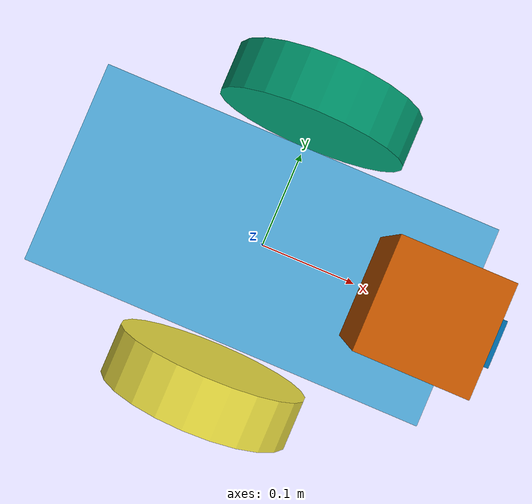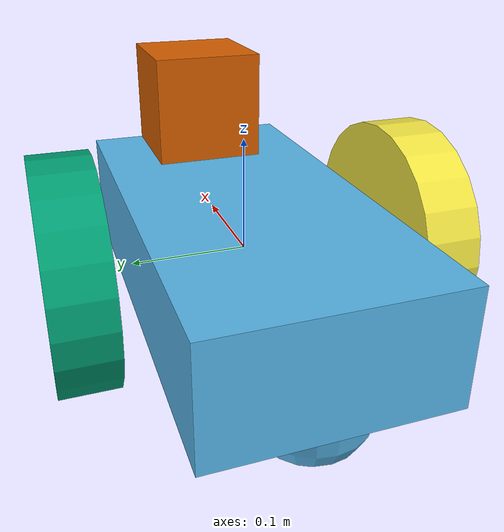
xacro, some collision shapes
<?xml version='1.0'?>

<robot name="my_robot" xmlns:xacro="http://www.ros.org/wiki/xacro">

  <xacro:include filename="$(find my_robot)/urdf/my_robot.gazebo"/>

  <link name="robot_footprint"></link>

  <joint name="robot_footprint_joint" type="fixed">
    <origin xyz="0 0 0" rpy="0 0 0" />
    <parent link="robot_footprint"/>
    <child link="chassis" />
  </joint>

  <link name='chassis'>
    <pose>0 0 0.1 0 0 0</pose>

    <inertial>
      <mass value="15.0"/>
      <origin xyz="0.0 0 0" rpy=" 0 0 0"/>
      <inertia
          ixx="0.1" ixy="0" ixz="0"
          iyy="0.1" iyz="0"
          izz="0.1"
      />
    </inertial>

    <collision name='collision'>
      <origin xyz="0 0 0" rpy=" 0 0 0"/>
      <geometry>
        <box size=".4 .2 .1"/>
      </geometry>
    </collision>

    <visual name='chassis_visual'>
      <origin xyz="0 0 0" rpy=" 0 0 0"/>
      <geometry>
        <box size=".4 .2 .1"/>
      </geometry>
    </visual>

    <collision name='back_caster_collision'>
      <origin xyz="-0.15 0 -0.05" rpy=" 0 0 0"/>
      <geometry>
        <sphere radius="0.0499"/>
      </geometry>
    </collision>

    <visual name='back_caster_visual'>
      <origin xyz="-0.15 0 -0.05" rpy=" 0 0 0"/>
      <geometry>
        <sphere radius="0.05"/>
      </geometry>
    </visual>

    <collision name='front_caster_collision'>
      <origin xyz="0.15 0 -0.05" rpy=" 0 0 0"/>
      <geometry>
        <sphere radius="0.0499"/>
      </geometry>
    </collision>

    <visual name='front_caster_visual'>
      <origin xyz="0.15 0 -0.05" rpy=" 0 0 0"/>
      <geometry>
        <sphere radius="0.05"/>
      </geometry>
    </visual>

  </link>

  <link name='left_wheel'>

    <inertial>
      <mass value="5.0"/>
      <origin xyz="0.0 0 0" rpy="0 1.5707 1.5707"/>
      <inertia
          ixx="0.1" ixy="0" ixz="0"
          iyy="0.1" iyz="0"
          izz="0.1"
      />
    </inertial>

    <collision name='left_wheel_collision'>
      <origin xyz="0 0 0" rpy="0 1.5707 1.5705"/>
      <geometry>
        <cylinder radius="0.1" length="0.05"/>
      </geometry>
    </collision>

    <visual name='left_wheel_visual'>
      <origin xyz="0 0 0" rpy="0 1.5707 1.5707"/>
      <geometry>
        <cylinder radius=".1" length=".05"/>
      </geometry>
    </visual>
  </link>

  <joint type="continuous" name="left_wheel_hinge">
    <origin xyz="0 0.15 0" rpy="0 0 0"/>
    <child link="left_wheel"/>
    <parent link="chassis"/>
    <axis xyz="0 1 0" rpy="0 0 0"/>
    <limit effort="10000" velocity="1000"/>
    <dynamics damping="1.0" friction="1.0"/>
  </joint>

  <link name='right_wheel'>

    <inertial>
      <mass value="5.0"/>
      <origin xyz="0.0 0 0" rpy="0 1.5707 1.5707"/>
      <inertia
          ixx="0.1" ixy="0" ixz="0"
          iyy="0.1" iyz="0"
          izz="0.1"
      />
    </inertial>

    <collision name='right_wheel_collision'>
      <origin xyz="0 0 0" rpy="0 1.5707 1.5705"/>
      <geometry>
        <cylinder radius="0.1" length="0.05"/>
      </geometry>
    </collision>

    <visual name='right_wheel_visual'>
      <origin xyz="0 0 0" rpy="0 1.5707 1.5707"/>
      <geometry>
        <cylinder radius=".1" length=".05"/>
      </geometry>
    </visual>
  </link>

  <joint type="continuous" name="right_wheel_hinge">
    <origin xyz="0 -0.15 0" rpy="0 0 0"/>
    <child link="right_wheel"/>
    <parent link="chassis"/>
    <axis xyz="0 1 0" rpy="0 0 0"/>
    <limit effort="10000" velocity="1000"/>
    <dynamics damping="1.0" friction="1.0"/>
  </joint>

  <link name="camera">
    <inertial>
      <origin xyz="0.0 0.0 0.0" rpy="0.0 0.0 0.0"/>
      <mass value="0.1"/>
      <inertia ixx="1e-6" ixy="0.0" ixz="0.0" iyy="1e-6" iyz="0.0" izz="1e-6"/>
    </inertial>
    <visual name="camera_visual">
      <origin xyz="0.0 0.0 0.0" rpy="0.0 0.0 0.0"/>
      <geometry>
        <box size="0.1 0.05 0.05"/>
      </geometry>
    </visual>
    <collision name="camera_collision">
      <origin xyz="0.0 0.0 0.0" rpy="0.0 0.0 0.0"/>
      <geometry>
        <box size="0.1 0.05 0.05"/>
      </geometry>
    </collision>
  </link>

  <joint name="camera_joint" type="fixed">
    <origin xyz=".2 0.0 0.0" rpy="0.0 0.0 0.0"/>
    <parent link="chassis"/>
    <child link="camera"/>
    <axis xyz="0.0 1 0.0"/>
  </joint>

  <link name="hokuyo">

    <inertial>
      <origin xyz="0.0 0.0 0.0" rpy="0.0 0.0 0.0"/>
      <mass value="1e-5"/>
      <inertia ixx="1e-6" ixy="0.0" ixz="0.0" iyy="1e-6" iyz="0.0" izz="1e-6"/>
    </inertial>

    <visual name="hokuyo_visual" >
      <origin xyz="0.0 0.0 0.0" rpy="0.0 0.0 0.0"/>
        <geometry>
          <mesh filename="package://my_robot/meshes/hokuyo.dae"/>
        </geometry>
    </visual>

    <collision name="hokuyo_collision">
      <origin xyz="0.0 0.0 0.0" rpy="0.0 0.0 0.0"/>
      <geometry>
        <box size="0.1 0.1 0.1"/>
      </geometry>
    </collision>
  </link>

  <joint name="hokuyo_joint" type="fixed">
    <origin xyz=".15 0 .1" rpy="0.0 0.0 0.0"/>
    <parent link="chassis"/>
    <child link="hokuyo"/>
    <axis xyz="0 1 0"/>
  </joint>

</robot>
